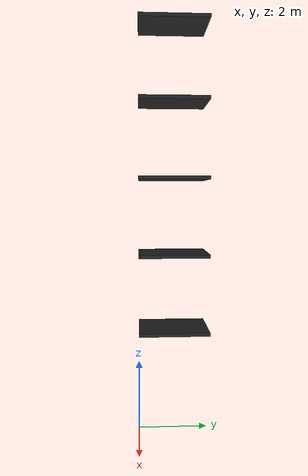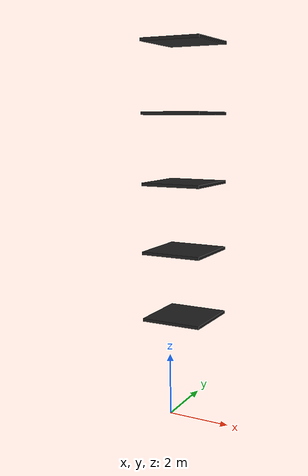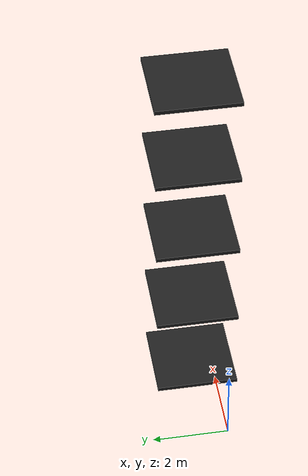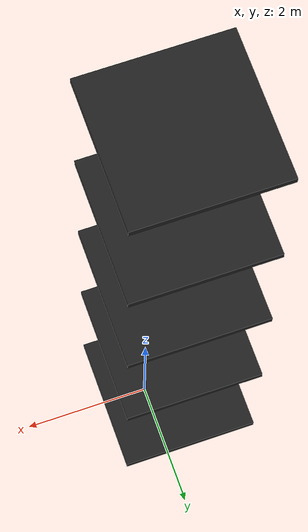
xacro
<?xml version="1.0"?>
<robot name="flexible_environment" xmlns:xacro="http://www.ros.org/wiki/xacro">

  <link name="world"/>
  <!-- Import the xacro model of the window -->
  <xacro:include filename="$(find flexible_environment)/urdf/flexible_window.xacro" />

  <!-- Creating the xacro loop to generate n windows -->
  <xacro:macro name="loop" params="number_windows">
    <xacro:window number="${number_windows}"/>
    <xacro:if value="${number_windows-1}">
      <xacro:loop number_windows="${number_windows-1}"/>
    </xacro:if>
  </xacro:macro>

  <!-- Generate the windows -->
  <xacro:loop number_windows="5"/>

</robot>

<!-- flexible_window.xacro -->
<robot xmlns:xacro="http://www.ros.org/wiki/xacro">

	<xacro:arg name="mass" default="0.1"/>
  <xacro:arg name="stiffness" default="0.2"/>
  <xacro:arg name="damping" default="0.03"/>
  <xacro:property name="offset" value="3"/>
	<xacro:property name="length" value="2"/>
	<xacro:property name="width" value="2"/>
  <xacro:property name="height" value="0.1"/>
  <xacro:property name="space_between" value="${0.2+width}"/>
	<xacro:property name="upper_limit" value="90"/>
	<xacro:property name="lower_limit" value="-270"/>
  <xacro:property name="mass" value="$(arg mass)"/>
  <xacro:property name="friction" default="${mass*0.01}"/>
	<xacro:property name="stiffness" default="$(arg stiffness)"/>
  <xacro:property name="damping" default="$(arg damping)"/>

  <xacro:macro name="window" params="number">
    <link name="window_${number}">
      <inertial>
        <origin xyz="0 ${width/2} 0"/>
        <mass value="${mass}" />
        <inertia  ixx="${1/12*mass*(height**2+width**2)+1/4*mass*length**2}" ixy="0.0"  ixz="0.0"
                  iyy="${1/12*mass*(height**2+length**2)}"  iyz="0.0"  izz="${1/12*mass*(width**2+length**2)}" />
      </inertial>
      <visual>
        <origin xyz="0 ${width/2} 0"/>
        <geometry>
          <box size="${length} ${width} ${height}"/>
        </geometry>
      </visual>
      <collision>
        <origin xyz="0 ${width/2} 0"/>
        <geometry>
          <box size="${length} ${width} ${height}"/>
        </geometry>
      </collision>
    </link>

    <joint name="hinge_${number}" type="revolute">
      <parent link="world"/>
      <child link="window_${number}"/>
      <dynamics damping="${damping}" friction="${friction}" />
      <origin xyz="0 0 ${offset+(number-1)*space_between}"/>
      <axis xyz="1 0 0"/>
      <limit lower="${lower_limit*pi/180}" upper="${upper_limit*pi/180}" effort="1000.0" velocity="100.0"/>
    </joint>

    <!-- Import all Gazebo-customization elements, including Gazebo colors -->
    <xacro:include filename="$(find flexible_environment)/urdf/flexible_window.gazebo"/>

  </xacro:macro>

</robot>
